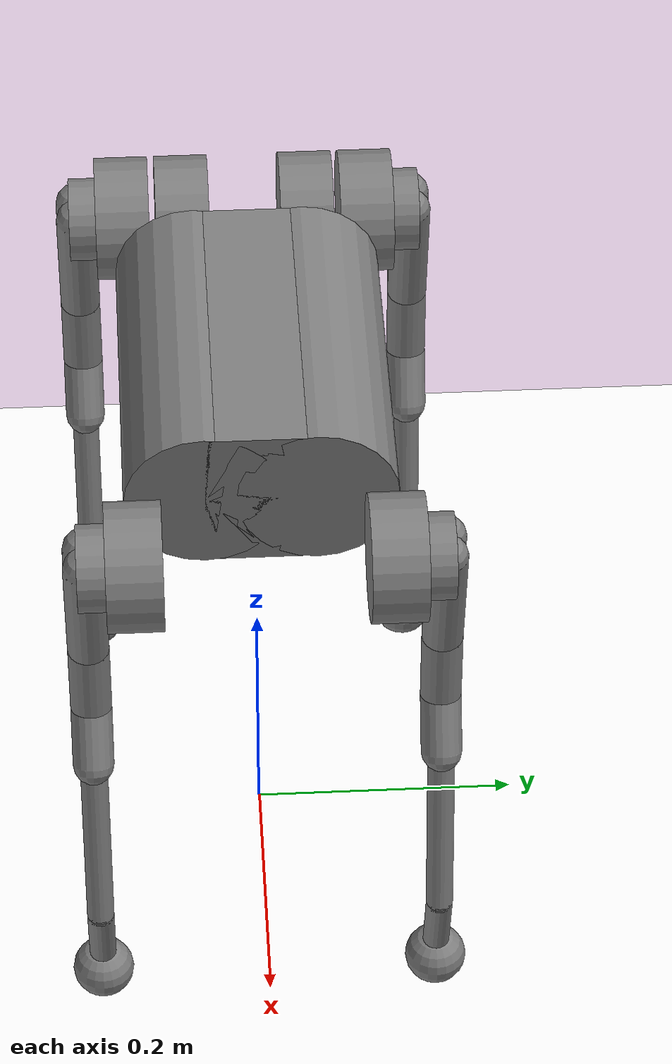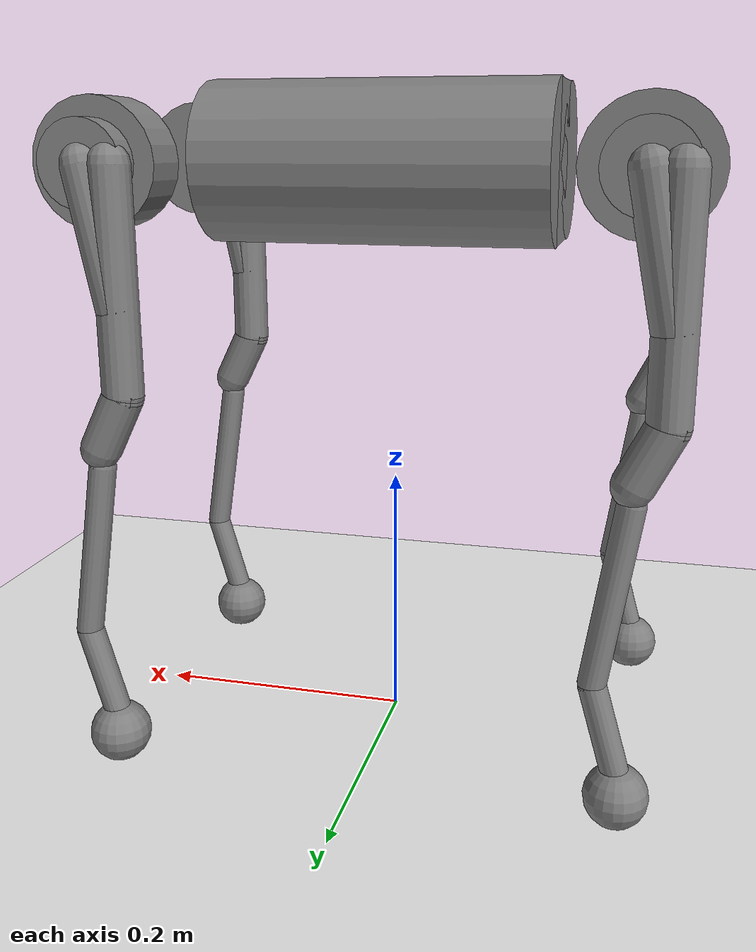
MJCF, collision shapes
<mujoco model="go1 feetonly flat terrain scene">
  <include file="go1_mjx_feetonly.xml"/>

  <statistic center="0 0 0.1" extent="0.8" meansize="0.04"/>

  <visual>
    <headlight diffuse=".8 .8 .8" ambient=".2 .2 .2" specular="1 1 1"/>
    <rgba force="1 0 0 1"/>
    <global azimuth="120" elevation="-20"/>
    <map force="0.01"/>
    <scale forcewidth="0.3" contactwidth="0.5" contactheight="0.2"/>
    <quality shadowsize="8192"/>
  </visual>

  <asset>
    <texture type="skybox" builtin="gradient" rgb1="1 1 1" rgb2="1 1 1" width="800" height="800"/>
    <texture type="2d" name="groundplane" builtin="checker" mark="edge" rgb1="1 1 1" rgb2="1 1 1" markrgb="0 0 0"
      width="300" height="300"/>
    <material name="groundplane" texture="groundplane" texuniform="true" texrepeat="5 5" reflectance="0"/>
  </asset>

  <worldbody>
    <geom name="floor" size="0 0 0.01" type="plane" material="groundplane" contype="1" conaffinity="0" priority="1"
      friction="0.6" condim="3"/>
  </worldbody>

  <sensor>
    <contact name="FR_floor_found" geom1="FR" geom2="floor" reduce="mindist" num="1" data="found"/>
    <contact name="FL_floor_found" geom1="FL" geom2="floor" reduce="mindist" num="1" data="found"/>
    <contact name="RL_floor_found" geom1="RL" geom2="floor" reduce="mindist" num="1" data="found"/>
    <contact name="RR_floor_found" geom1="RR" geom2="floor" reduce="mindist" num="1" data="found"/>
  </sensor>

  <keyframe>
    <key name="home" qpos="
    0 0 0.278
    1 0 0 0
    0.1 0.9 -1.8
    -0.1 0.9 -1.8
    0.1 0.9 -1.8
    -0.1 0.9 -1.8"
      ctrl="0.1 0.9 -1.8 -0.1 0.9 -1.8 0.1 0.9 -1.8 -0.1 0.9 -1.8"/>
    <key name="home_higher" qpos="0 0 0.31 1 0 0 0 0 0.82 -1.63 0 0.82 -1.63 0 0.82 -1.63 0 0.82 -1.63"
      ctrl="0 0.82 -1.63 0 0.82 -1.63 0 0.82 -1.63 0 0.82 -1.63"/>
    <key
    name="footstand"
    qpos='
    0 0 0.54
    0.8 0 -0.8 0
    0 0.82 -1.6 0 0.82 -1.68 0 1.82 -1.16 0.0 1.82 -1.16'
    ctrl='0 0.82 -1.6 0 0.82 -1.68 0 1.82 -1.16 0.0 1.82 -1.16'/>
    <key name="handstand"
      qpos="0 0 0.54
      0.8 0 0.8 0
      0 -0.686 -1.16
      0 -0.686 -1.16
      0 1.7 -1.853
      0 1.7 -1.853"
      ctrl="0 -0.686 -1.16 0 -0.686 -1.16 0 1.7 -1.853 0 1.7 -1.853"/>
    <key name="pre_recovery"
      qpos="-0.0318481 -0.000215369 0.0579031 1 -2.70738e-05 6.06169e-05 0.000231261 -0.352275 1.18554 -2.80738 0.360892 1.1806 -2.80281 -0.381197 1.16812 -2.79123 0.391054 1.1622 -2.78576"
      ctrl="-0.352275 1.18554 -2.80738 0.360892 1.1806 -2.80281 -0.381197 1.16812 -2.79123 0.391054 1.1622 -2.78576"/>
  </keyframe>
</mujoco>

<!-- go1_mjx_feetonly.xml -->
<mujoco model="go1 feet only">
  <compiler angle="radian" autolimits="true"/>

  <option timestep="0.004" integrator="Euler">
    <flag eulerdamp="disable"/>
  </option>

  <default>
    <default class="go1">
      <!-- This globaly disables all collisions. -->
      <geom condim="1" contype="0" conaffinity="0"/>
      <joint axis="0 1 0" armature="0.005" damping="0.5"/>
      <position forcerange="-23.7 23.7" inheritrange="1" kp="35"/>
      <default class="abduction">
        <joint axis="1 0 0" range="-0.863 0.863" frictionloss="0.3"/>
      </default>
      <default class="hip">
        <joint range="-0.686 4.501" frictionloss="0.3"/>
      </default>
      <default class="knee">
        <joint range="-2.818 -0.888" frictionloss="1.0"/>
        <position forcerange="-35.55 35.55"/>
      </default>
      <default class="visual">
        <geom type="mesh" contype="0" conaffinity="0" group="2" material="dark"/>
      </default>
      <default class="collision">
        <geom group="3" type="capsule"/>
        <default class="hip_left1">
          <geom size="0.046 0.02" pos="0 0.045 0" quat="1 1 0 0" type="cylinder"/>
        </default>
        <default class="hip_left2">
          <geom size="0.031 0.02" pos="0 0.065 0" quat="1 1 0 0" type="cylinder"/>
        </default>
        <default class="hip_left3">
          <geom size="0.046 0.02" quat="1 1 0 0" type="cylinder"/>
        </default>
        <default class="hip_right1">
          <geom size="0.046 0.02" pos="0 -0.045 0" quat="1 1 0 0" type="cylinder"/>
        </default>
        <default class="hip_right2">
          <geom size="0.031 0.02" pos="0 -0.065 0" quat="1 1 0 0" type="cylinder"/>
        </default>
        <default class="hip_right3">
          <geom size="0.046 0.02" quat="1 1 0 0" type="cylinder"/>
        </default>
        <default class="thigh1">
          <geom size="0.015" fromto="-0.02 0 0 -0.02 0 -0.16"/>
        </default>
        <default class="thigh2">
          <geom size="0.015" fromto="0 0 0 -0.02 0 -0.1"/>
        </default>
        <default class="thigh3">
          <geom size="0.015" fromto="-0.02 0 -0.16 0 0 -0.2"/>
        </default>
        <default class="calf1">
          <geom size="0.01" fromto="0 0 0 0.02 0 -0.13"/>
        </default>
        <default class="calf2">
          <geom size="0.01" fromto="0.02 0 -0.13 0 0 -0.2"/>
        </default>
        <default class="foot">
          <geom type="sphere" size="0.023" pos="0 0 -0.213" solimp="0.9 .95 0.023" contype="0" conaffinity="1" condim="3"/>
        </default>
      </default>
    </default>
  </default>

  <asset>
    <material name="dark" rgba="0.2 0.2 0.2 1"/>
    <mesh class="go1" file="assets/trunk.stl"/>
    <mesh class="go1" file="assets/hip.stl"/>
    <mesh class="go1" file="assets/thigh_mirror.stl"/>
    <mesh class="go1" file="assets/calf.stl"/>
    <mesh class="go1" file="assets/thigh.stl"/>
  </asset>

  <worldbody>
    <light name="spotlight" mode="targetbodycom" target="trunk" pos="3 0 4"/>
    <body name="trunk" pos="0 0 0.445" childclass="go1">
      <camera name="track" pos="0.846 -1.3 0.316" xyaxes="0.866 0.500 0.000 -0.171 0.296 0.940" mode="trackcom"/>
      <camera name="top" pos="-1 0 1" xyaxes="0 -1 0 0.7 0 0.7" mode="trackcom"/>
      <camera name="side" pos="0 -1 .3" xyaxes="1 0 0 0 1 2" mode="trackcom"/>
      <camera name="back" pos="-1 0 .3" xyaxes="0 -1 0 1 0 2" mode="trackcom"/>
      <site name="head" pos="0.3 0 0" rgba="1 0 0 1" size="0.02" group="5"/>
      <inertial pos="0.0223 0.002 -0.0005" quat="-0.00342088 0.705204 0.000106698 0.708996" mass="5.204"
        diaginertia="0.0716565 0.0630105 0.0168101"/>
      <freejoint/>
      <geom class="visual" mesh="trunk"/>
      <geom class="collision" size="0.125 0.04 0.057" type="box"/>
      <geom class="collision" quat="1 0 1 0" pos="0 -0.04 0" size="0.058 0.125" type="cylinder"/>
      <geom class="collision" quat="1 0 1 0" pos="0 +0.04 0" size="0.058 0.125" type="cylinder"/>
      <site name="imu" pos="-0.01592 -0.06659 -0.00617" group="5"/>
      <body name="FR_hip" pos="0.1881 -0.04675 0">
        <inertial pos="-0.0049166 0.00762615 -8.865e-05" quat="0.507341 0.514169 0.495027 0.482891" mass="0.68"
          diaginertia="0.000734064 0.000468438 0.000398719"/>
        <joint class="abduction" name="FR_hip_joint"/>
        <geom class="visual" mesh="hip" quat="1 0 0 0"/>
        <geom class="hip_right1"/>
        <geom class="hip_right2"/>
        <body name="FR_thigh" pos="0 -0.08 0">
          <inertial pos="-0.00304722 0.019315 -0.0305004" quat="0.65243 -0.0272313 0.0775126 0.753383" mass="1.009"
            diaginertia="0.00478717 0.00460903 0.000709268"/>
          <joint class="hip" name="FR_thigh_joint"/>
          <geom class="visual" mesh="thigh_mirror"/>
          <geom class="thigh1"/>
          <geom class="thigh2"/>
          <geom class="thigh3"/>
          <body name="FR_calf" pos="0 0 -0.213">
            <inertial pos="0.00429862 0.000976676 -0.146197" quat="0.691246 0.00357467 0.00511118 0.722592"
              mass="0.195862" diaginertia="0.00149767 0.00148468 3.58427e-05"/>
            <joint class="knee" name="FR_calf_joint"/>
            <geom class="visual" mesh="calf"/>
            <geom class="calf1"/>
            <geom class="calf2"/>
            <geom name="FR" class="foot"/>
            <site name="FR" pos="0 0 -0.213" type="sphere" size="0.023" group="5"/>
          </body>
        </body>
      </body>
      <body name="FL_hip" pos="0.1881 0.04675 0">
        <inertial pos="-0.0049166 -0.00762615 -8.865e-05" quat="0.482891 0.495027 0.514169 0.507341" mass="0.68"
          diaginertia="0.000734064 0.000468438 0.000398719"/>
        <joint class="abduction" name="FL_hip_joint"/>
        <geom class="visual" mesh="hip"/>
        <geom class="hip_left1"/>
        <geom class="hip_left2"/>
        <body name="FL_thigh" pos="0 0.08 0">
          <inertial pos="-0.00304722 -0.019315 -0.0305004" quat="0.753383 0.0775126 -0.0272313 0.65243" mass="1.009"
            diaginertia="0.00478717 0.00460903 0.000709268"/>
          <joint class="hip" name="FL_thigh_joint"/>
          <geom class="visual" mesh="thigh"/>
          <geom class="thigh1"/>
          <geom class="thigh2"/>
          <geom class="thigh3"/>
          <body name="FL_calf" pos="0 0 -0.213">
            <inertial pos="0.00429862 0.000976676 -0.146197" quat="0.691246 0.00357467 0.00511118 0.722592"
              mass="0.195862" diaginertia="0.00149767 0.00148468 3.58427e-05"/>
            <joint class="knee" name="FL_calf_joint"/>
            <geom class="visual" mesh="calf"/>
            <geom class="calf1"/>
            <geom class="calf2"/>
            <geom name="FL" class="foot"/>
            <site name="FL" pos="0 0 -0.213" type="sphere" size="0.023" group="5"/>
          </body>
        </body>
      </body>
      <body name="RR_hip" pos="-0.1881 -0.04675 0">
        <inertial pos="0.0049166 0.00762615 -8.865e-05" quat="0.495027 0.482891 0.507341 0.514169" mass="0.68"
          diaginertia="0.000734064 0.000468438 0.000398719"/>
        <joint class="abduction" name="RR_hip_joint"/>
        <geom class="visual" quat="0 0 0 -1" mesh="hip"/>
        <geom class="hip_right1"/>
        <geom class="hip_right2"/>
        <geom class="hip_right3"/>
        <body name="RR_thigh" pos="0 -0.08 0">
          <inertial pos="-0.00304722 0.019315 -0.0305004" quat="0.65243 -0.0272313 0.0775126 0.753383" mass="1.009"
            diaginertia="0.00478717 0.00460903 0.000709268"/>
          <joint class="hip" name="RR_thigh_joint"/>
          <geom class="visual" mesh="thigh_mirror"/>
          <geom class="thigh1"/>
          <geom class="thigh2"/>
          <geom class="thigh3"/>
          <body name="RR_calf" pos="0 0 -0.213">
            <inertial pos="0.00429862 0.000976676 -0.146197" quat="0.691246 0.00357467 0.00511118 0.722592"
              mass="0.195862" diaginertia="0.00149767 0.00148468 3.58427e-05"/>
            <joint class="knee" name="RR_calf_joint"/>
            <geom class="visual" mesh="calf"/>
            <geom class="calf1"/>
            <geom class="calf2"/>
            <geom name="RR" class="foot"/>
            <site name="RR" pos="0 0 -0.213" type="sphere" size="0.023" group="5"/>
          </body>
        </body>
      </body>
      <body name="RL_hip" pos="-0.1881 0.04675 0">
        <inertial pos="0.0049166 -0.00762615 -8.865e-05" quat="0.514169 0.507341 0.482891 0.495027" mass="0.68"
          diaginertia="0.000734064 0.000468438 0.000398719"/>
        <joint class="abduction" name="RL_hip_joint"/>
        <geom class="visual" quat="0 0 1 0" mesh="hip"/>
        <geom class="hip_left1"/>
        <geom class="hip_left2"/>
        <geom class="hip_left3"/>
        <body name="RL_thigh" pos="0 0.08 0">
          <inertial pos="-0.00304722 -0.019315 -0.0305004" quat="0.753383 0.0775126 -0.0272313 0.65243" mass="1.009"
            diaginertia="0.00478717 0.00460903 0.000709268"/>
          <joint class="hip" name="RL_thigh_joint"/>
          <geom class="visual" mesh="thigh"/>
          <geom class="thigh1"/>
          <geom class="thigh2"/>
          <geom class="thigh3"/>
          <body name="RL_calf" pos="0 0 -0.213">
            <inertial pos="0.00429862 0.000976676 -0.146197" quat="0.691246 0.00357467 0.00511118 0.722592"
              mass="0.195862" diaginertia="0.00149767 0.00148468 3.58427e-05"/>
            <joint class="knee" name="RL_calf_joint"/>
            <geom class="visual" mesh="calf"/>
            <geom class="calf1"/>
            <geom class="calf2"/>
            <geom name="RL" class="foot"/>
            <site name="RL" pos="0 0 -0.213" type="sphere" size="0.023" group="5"/>
          </body>
        </body>
      </body>
    </body>
  </worldbody>

  <actuator>
    <position class="abduction" name="FR_hip" joint="FR_hip_joint"/>
    <position class="hip" name="FR_thigh" joint="FR_thigh_joint"/>
    <position class="knee" name="FR_calf" joint="FR_calf_joint"/>
    <position class="abduction" name="FL_hip" joint="FL_hip_joint"/>
    <position class="hip" name="FL_thigh" joint="FL_thigh_joint"/>
    <position class="knee" name="FL_calf" joint="FL_calf_joint"/>
    <position class="abduction" name="RR_hip" joint="RR_hip_joint"/>
    <position class="hip" name="RR_thigh" joint="RR_thigh_joint"/>
    <position class="knee" name="RR_calf" joint="RR_calf_joint"/>
    <position class="abduction" name="RL_hip" joint="RL_hip_joint"/>
    <position class="hip" name="RL_thigh" joint="RL_thigh_joint"/>
    <position class="knee" name="RL_calf" joint="RL_calf_joint"/>
  </actuator>

  <sensor>
    <gyro site="imu" name="gyro"/>
    <velocimeter site="imu" name="local_linvel"/>
    <accelerometer site="imu" name="accelerometer"/>
    <framepos objtype="site" objname="imu" name="position"/>
    <framezaxis objtype="site" objname="imu" name="upvector"/>
    <framexaxis objtype="site" objname="imu" name="forwardvector"/>
    <framelinvel objtype="site" objname="imu" name="global_linvel"/>
    <frameangvel objtype="site" objname="imu" name="global_angvel"/>
    <framequat objtype="site" objname="imu" name="orientation"/>
    <framelinvel objtype="site" objname="FR" name="FR_global_linvel"/>
    <framelinvel objtype="site" objname="FL" name="FL_global_linvel"/>
    <framelinvel objtype="site" objname="RR" name="RR_global_linvel"/>
    <framelinvel objtype="site" objname="RL" name="RL_global_linvel"/>
    <framepos objtype="site" objname="FR" name="FR_pos" reftype="site" refname="imu"/>
    <framepos objtype="site" objname="FL" name="FL_pos" reftype="site" refname="imu"/>
    <framepos objtype="site" objname="RR" name="RR_pos" reftype="site" refname="imu"/>
    <framepos objtype="site" objname="RL" name="RL_pos" reftype="site" refname="imu"/>
  </sensor>
</mujoco>
